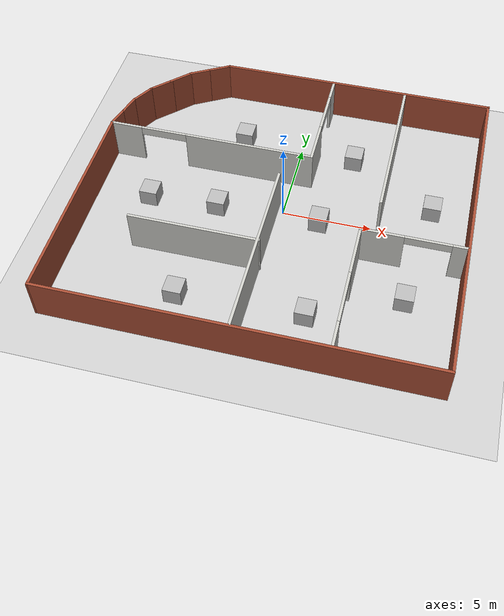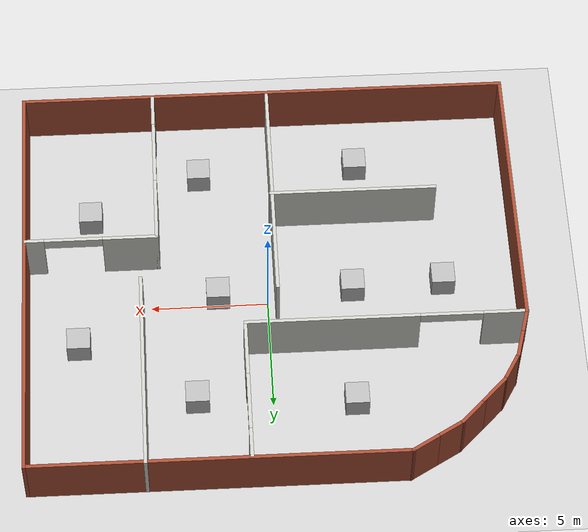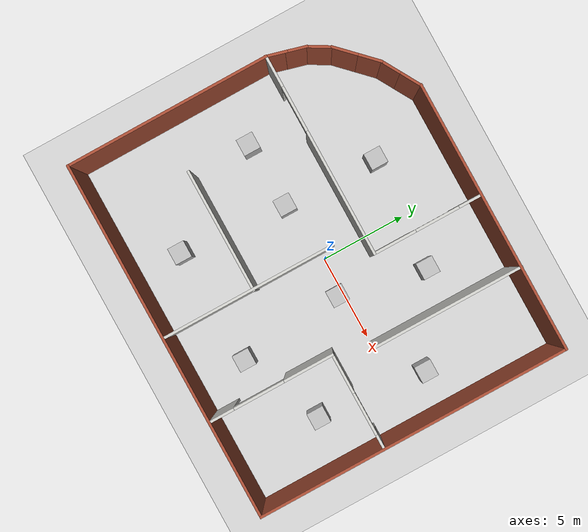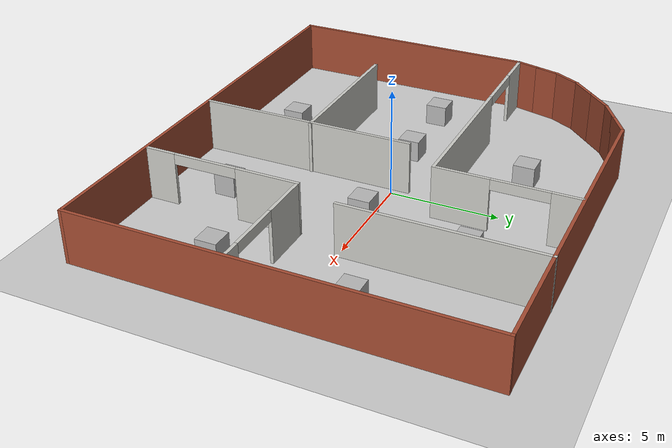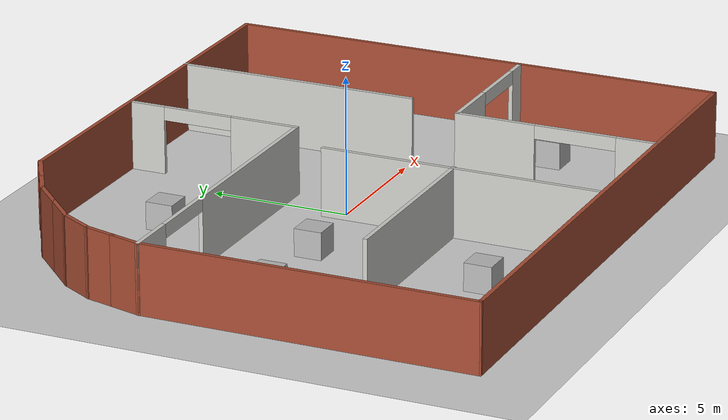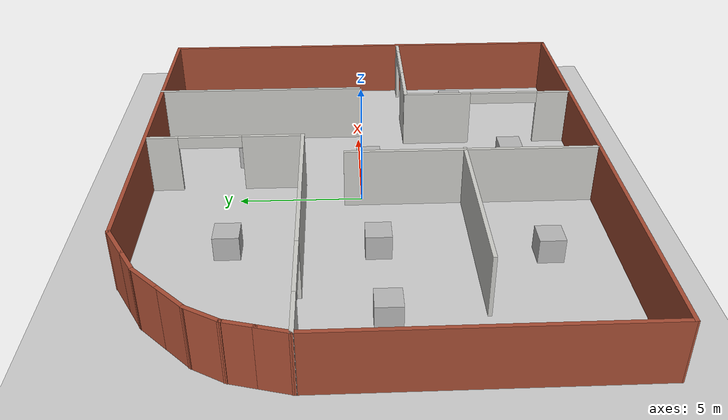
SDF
<sdf version="1.6">
 <world name="default">
  <light name="sun" type="directional">
   <pose>0 0 10 0 -0 0</pose>
   <diffuse>0.8 0.8 0.8 1</diffuse>
   <specular>0.2 0.2 0.2 1</specular>
   <attenuation>
    <range>1000</range>
    <constant>0.9</constant>
    <linear>0.01</linear>
    <quadratic>0.001</quadratic>
   </attenuation>
   <direction>-0.5 0.1 -0.9</direction>
  </light>
  <model name="ground_plane">
   <static>1</static>
   <link name="link">
    <collision name="collision">
     <geometry><plane><normal>0 0 1</normal><size>100 100</size></plane></geometry>
     <surface><friction><ode><mu>100</mu><mu2>50</mu2></ode></friction></surface>
    </collision>
    <visual name="visual">
     <cast_shadows>0</cast_shadows>
     <geometry><plane><normal>0 0 1</normal><size>100 100</size></plane></geometry>
     <material>
      <script><uri>file://media/materials/scripts/gazebo.material</uri><name>Gazebo/Grey</name></script>
     </material>
    </visual>
   </link>
  </model>
  <gravity>0 0 -9.8</gravity>
  <magnetic_field>6e-06 2.3e-05 -4.2e-05</magnetic_field>
  <atmosphere type="adiabatic"/>
  <physics name="default_physics" default="0" type="ode">
   <max_step_size>0.001</max_step_size>
   <real_time_factor>1</real_time_factor>
   <real_time_update_rate>1000</real_time_update_rate>
  </physics>
  <scene><ambient>0.4 0.4 0.4 1</ambient><background>0.7 0.7 0.7 1</background><shadows>1</shadows></scene>
  <spherical_coordinates>
   <surface_model>EARTH_WGS84</surface_model>
   <latitude_deg>0</latitude_deg>
   <longitude_deg>0</longitude_deg>
   <elevation>0</elevation>
   <heading_deg>0</heading_deg>
  </spherical_coordinates>
  <model name="rss1">
   <pose>-0.23521 -0.35315 0 0 -0 0</pose>
   <link name="Wall_10">
    <collision name="Wall_10_Collision">
     <geometry><box><size>1.5 0.15 2.5</size></box></geometry>
     <pose>0 0 1.25 0 -0 0</pose>
    </collision>
    <visual name="Wall_10_Visual">
     <pose>0 0 1.25 0 -0 0</pose>
     <geometry><box><size>1.5 0.15 2.5</size></box></geometry>
     <material>
      <script><uri>file://media/materials/scripts/gazebo.material</uri><name>Gazebo/Bricks</name></script>
      <ambient>1 1 1 1</ambient>
     </material>
     <meta><layer>0</layer></meta>
    </visual>
    <pose>-8.83255 6.50446 0 0 -0 0.785398</pose>
   </link>
   <link name="Wall_11">
    <collision name="Wall_11_Collision">
     <geometry><box><size>1.5 0.15 2.5</size></box></geometry>
     <pose>0 0 1.25 0 -0 0</pose>
    </collision>
    <visual name="Wall_11_Visual">
     <pose>0 0 1.25 0 -0 0</pose>
     <geometry><box><size>1.5 0.15 2.5</size></box></geometry>
     <material>
      <script><uri>file://media/materials/scripts/gazebo.material</uri><name>Gazebo/Bricks</name></script>
      <ambient>1 1 1 1</ambient>
     </material>
     <meta><layer>0</layer></meta>
    </visual>
    <pose>-7.87796 7.45906 0 0 -0 0.785398</pose>
   </link>
   <link name="Wall_12">
    <collision name="Wall_12_Collision">
     <geometry><box><size>1.25 0.15 2.5</size></box></geometry>
     <pose>0 0 1.25 0 -0 0</pose>
    </collision>
    <visual name="Wall_12_Visual">
     <pose>0 0 1.25 0 -0 0</pose>
     <geometry><box><size>1.25 0.15 2.5</size></box></geometry>
     <material>
      <script><uri>file://media/materials/scripts/gazebo.material</uri><name>Gazebo/Bricks</name></script>
      <ambient>1 1 1 1</ambient>
     </material>
     <meta><layer>0</layer></meta>
    </visual>
    <pose>-6.92434 8.21135 0 0 -0 0.523599</pose>
   </link>
   <link name="Wall_13">
    <collision name="Wall_13_Collision">
     <geometry><box><size>1.5 0.15 2.5</size></box></geometry>
     <pose>0 0 1.25 0 -0 0</pose>
    </collision>
    <visual name="Wall_13_Visual">
     <pose>0 0 1.25 0 -0 0</pose>
     <geometry><box><size>1.5 0.15 2.5</size></box></geometry>
     <material>
      <script><uri>file://media/materials/scripts/gazebo.material</uri><name>Gazebo/Bricks</name></script>
      <ambient>1 1 1 1</ambient>
     </material>
     <meta><layer>0</layer></meta>
    </visual>
    <pose>-5.86346 8.82385 0 0 -0 0.523599</pose>
   </link>
   <link name="Wall_14">
    <collision name="Wall_14_Collision">
     <geometry><box><size>16 0.15 2.5</size></box></geometry>
     <pose>0 0 1.25 0 -0 0</pose>
    </collision>
    <visual name="Wall_14_Visual">
     <pose>0 0 1.25 0 -0 0</pose>
     <geometry><box><size>16 0.15 2.5</size></box></geometry>
     <material>
      <script><uri>file://media/materials/scripts/gazebo.material</uri><name>Gazebo/Bricks</name></script>
      <ambient>1 1 1 1</ambient>
     </material>
     <meta><layer>0</layer></meta>
    </visual>
    <pose>2.6461 9.16135 0 0 -0 0</pose>
   </link>
   <link name="Wall_15">
    <collision name="Wall_15_Collision">
     <geometry><box><size>18.5 0.15 2.5</size></box></geometry>
     <pose>0 0 1.25 0 -0 0</pose>
    </collision>
    <visual name="Wall_15_Visual">
     <pose>0 0 1.25 0 -0 0</pose>
     <geometry><box><size>18.5 0.15 2.5</size></box></geometry>
     <material>
      <script><uri>file://media/materials/scripts/gazebo.material</uri><name>Gazebo/Bricks</name></script>
      <ambient>1 1 1 1</ambient>
     </material>
     <meta><layer>0</layer></meta>
    </visual>
    <pose>10.5711 -0.013646 0 0 0 -1.5708</pose>
   </link>
   <link name="Wall_16">
    <collision name="Wall_16_Collision">
     <geometry><box><size>21.25 0.15 2.5</size></box></geometry>
     <pose>0 0 1.25 0 -0 0</pose>
    </collision>
    <visual name="Wall_16_Visual">
     <pose>0 0 1.25 0 -0 0</pose>
     <geometry><box><size>21.25 0.15 2.5</size></box></geometry>
     <material>
      <script><uri>file://media/materials/scripts/gazebo.material</uri><name>Gazebo/Bricks</name></script>
      <ambient>1 1 1 1</ambient>
     </material>
     <meta><layer>0</layer></meta>
    </visual>
    <pose>0.021104 -9.18865 0 0 -0 3.14159</pose>
   </link>
   <link name="Wall_18">
    <collision name="Wall_18_Collision">
     <geometry><box><size>12.0717 0.15 2.5</size></box></geometry>
     <pose>0 0 1.25 0 -0 0</pose>
    </collision>
    <visual name="Wall_18_Visual">
     <pose>0 0 1.25 0 -0 0</pose>
     <geometry><box><size>12.0717 0.15 2.5</size></box></geometry>
     <material>
      <script><uri>file://media/materials/scripts/gazebo.material</uri><name>Gazebo/Bricks</name></script>
      <ambient>1 1 1 1</ambient>
     </material>
     <meta><layer>0</layer></meta>
    </visual>
    <pose>-10.5416 -3.22783 0 0 0 -1.56867</pose>
   </link>
   <link name="Wall_20">
    <pose>4.89349 -5.45065 0 0 -0 1.5708</pose>
    <visual name="Wall_20_Visual_0">
     <pose>-2.99933 0 1.25 0 -0 0</pose>
     <geometry><box><size>1.50133 0.15 2.5</size></box></geometry>
     <material>
      <script><uri>file://media/materials/scripts/gazebo.material</uri><name>Gazebo/CeilingTiled</name></script>
      <ambient>1 1 1 1</ambient>
     </material>
     <meta><layer>0</layer></meta>
    </visual>
    <collision name="Wall_20_Collision_0">
     <geometry><box><size>1.50133 0.15 2.5</size></box></geometry>
     <pose>-2.99933 0 1.25 0 -0 0</pose>
    </collision>
    <visual name="Wall_20_Visual_1">
     <pose>2.25311 0 1.25 0 -0 0</pose>
     <geometry><box><size>2.99378 0.15 2.5</size></box></geometry>
     <material>
      <script><uri>file://media/materials/scripts/gazebo.material</uri><name>Gazebo/CeilingTiled</name></script>
      <ambient>1 1 1 1</ambient>
     </material>
     <meta><layer>0</layer></meta>
    </visual>
    <collision name="Wall_20_Collision_1">
     <geometry><box><size>2.99378 0.15 2.5</size></box></geometry>
     <pose>2.25311 0 1.25 0 -0 0</pose>
    </collision>
    <visual name="Wall_20_Visual_2">
     <pose>-0.746227 0 2.25 0 -0 0</pose>
     <geometry><box><size>3.00488 0.15 0.5</size></box></geometry>
     <material>
      <script><uri>file://media/materials/scripts/gazebo.material</uri><name>Gazebo/CeilingTiled</name></script>
      <ambient>1 1 1 1</ambient>
     </material>
     <meta><layer>0</layer></meta>
    </visual>
    <collision name="Wall_20_Collision_2">
     <geometry><box><size>3.00488 0.15 0.5</size></box></geometry>
     <pose>-0.746227 0 2.25 0 -0 0</pose>
    </collision>
   </link>
   <link name="Wall_21">
    <pose>7.69349 -1.77565 0 0 -0 0</pose>
    <visual name="Wall_21_Visual_0">
     <pose>-1.67643 0 1.25 0 -0 0</pose>
     <geometry><box><size>2.39715 0.15 2.5</size></box></geometry>
     <material>
      <script><uri>file://media/materials/scripts/gazebo.material</uri><name>Gazebo/CeilingTiled</name></script>
      <ambient>1 1 1 1</ambient>
     </material>
     <meta><layer>0</layer></meta>
    </visual>
    <collision name="Wall_21_Collision_0">
     <geometry><box><size>2.39715 0.15 2.5</size></box></geometry>
     <pose>-1.67643 0 1.25 0 -0 0</pose>
    </collision>
    <visual name="Wall_21_Visual_1">
     <pose>2.44658 0 1.25 0 -0 0</pose>
     <geometry><box><size>0.856842 0.15 2.5</size></box></geometry>
     <material>
      <script><uri>file://media/materials/scripts/gazebo.material</uri><name>Gazebo/CeilingTiled</name></script>
      <ambient>1 1 1 1</ambient>
     </material>
     <meta><layer>0</layer></meta>
    </visual>
    <collision name="Wall_21_Collision_1">
     <geometry><box><size>0.856842 0.15 2.5</size></box></geometry>
     <pose>2.44658 0 1.25 0 -0 0</pose>
    </collision>
    <visual name="Wall_21_Visual_2">
     <pose>0.770152 0 2.25 0 -0 0</pose>
     <geometry><box><size>2.49601 0.15 0.5</size></box></geometry>
     <material>
      <script><uri>file://media/materials/scripts/gazebo.material</uri><name>Gazebo/CeilingTiled</name></script>
      <ambient>1 1 1 1</ambient>
     </material>
     <meta><layer>0</layer></meta>
    </visual>
    <collision name="Wall_21_Collision_2">
     <geometry><box><size>2.49601 0.15 0.5</size></box></geometry>
     <pose>0.770152 0 2.25 0 -0 0</pose>
    </collision>
   </link>
   <link name="Wall_25">
    <collision name="Wall_25_Collision">
     <geometry><box><size>10.25 0.15 2.5</size></box></geometry>
     <pose>0 0 1.25 0 -0 0</pose>
    </collision>
    <visual name="Wall_25_Visual">
     <pose>0 0 1.25 0 -0 0</pose>
     <geometry><box><size>10.25 0.15 2.5</size></box></geometry>
     <material>
      <script><uri>file://media/materials/scripts/gazebo.material</uri><name>Gazebo/CeilingTiled</name></script>
      <ambient>1 1 1 1</ambient>
     </material>
     <meta><layer>0</layer></meta>
    </visual>
    <pose>-0.153895 -4.04506 0 0 -0 1.5708</pose>
   </link>
   <link name="Wall_27">
    <collision name="Wall_27_Collision">
     <geometry><box><size>7.25 0.15 2.5</size></box></geometry>
     <pose>0 0 1.25 0 -0 0</pose>
    </collision>
    <visual name="Wall_27_Visual">
     <pose>0 0 1.25 0 -0 0</pose>
     <geometry><box><size>7.25 0.15 2.5</size></box></geometry>
     <material>
      <script><uri>file://media/materials/scripts/gazebo.material</uri><name>Gazebo/CeilingTiled</name></script>
      <ambient>1 1 1 1</ambient>
     </material>
     <meta><layer>0</layer></meta>
    </visual>
    <pose>-3.64271 -3.77236 0 0 -0 3.14159</pose>
   </link>
   <link name="Wall_31">
    <pose>-4.62925 2.73299 0 0 -0 0</pose>
    <visual name="Wall_31_Visual_0">
     <pose>-5.05122 0 1.25 0 -0 0</pose>
     <geometry><box><size>1.89756 0.15 2.5</size></box></geometry>
     <material>
      <script><uri>file://media/materials/scripts/gazebo.material</uri><name>Gazebo/CeilingTiled</name></script>
      <ambient>1 1 1 1</ambient>
     </material>
     <meta><layer>0</layer></meta>
    </visual>
    <collision name="Wall_31_Collision_0">
     <geometry><box><size>1.89756 0.15 2.5</size></box></geometry>
     <pose>-5.05122 0 1.25 0 -0 0</pose>
    </collision>
    <visual name="Wall_31_Visual_1">
     <pose>2.27825 0 1.25 0 -0 0</pose>
     <geometry><box><size>7.4435 0.15 2.5</size></box></geometry>
     <material>
      <script><uri>file://media/materials/scripts/gazebo.material</uri><name>Gazebo/CeilingTiled</name></script>
      <ambient>1 1 1 1</ambient>
     </material>
     <meta><layer>0</layer></meta>
    </visual>
    <collision name="Wall_31_Collision_1">
     <geometry><box><size>7.4435 0.15 2.5</size></box></geometry>
     <pose>2.27825 0 1.25 0 -0 0</pose>
    </collision>
    <visual name="Wall_31_Visual_2">
     <pose>-2.77297 0 2.25 0 -0 0</pose>
     <geometry><box><size>2.65894 0.15 0.5</size></box></geometry>
     <material>
      <script><uri>file://media/materials/scripts/gazebo.material</uri><name>Gazebo/CeilingTiled</name></script>
      <ambient>1 1 1 1</ambient>
     </material>
     <meta><layer>0</layer></meta>
    </visual>
    <collision name="Wall_31_Collision_2">
     <geometry><box><size>2.65894 0.15 0.5</size></box></geometry>
     <pose>-2.77297 0 2.25 0 -0 0</pose>
    </collision>
   </link>
   <link name="Wall_32">
    <pose>1.29575 5.90799 0 0 -0 1.5708</pose>
    <visual name="Wall_32_Visual_0">
     <pose>-1.96755 0 1.25 0 -0 0</pose>
     <geometry><box><size>2.56489 0.15 2.5</size></box></geometry>
     <material>
      <script><uri>file://media/materials/scripts/gazebo.material</uri><name>Gazebo/CeilingTiled</name></script>
      <ambient>1 1 1 1</ambient>
     </material>
     <meta><layer>0</layer></meta>
    </visual>
    <collision name="Wall_32_Collision_0">
     <geometry><box><size>2.56489 0.15 2.5</size></box></geometry>
     <pose>-1.96755 0 1.25 0 -0 0</pose>
    </collision>
    <visual name="Wall_32_Visual_1">
     <pose>2.57674 0 1.25 0 -0 0</pose>
     <geometry><box><size>1.34652 0.15 2.5</size></box></geometry>
     <material>
      <script><uri>file://media/materials/scripts/gazebo.material</uri><name>Gazebo/CeilingTiled</name></script>
      <ambient>1 1 1 1</ambient>
     </material>
     <meta><layer>0</layer></meta>
    </visual>
    <collision name="Wall_32_Collision_1">
     <geometry><box><size>1.34652 0.15 2.5</size></box></geometry>
     <pose>2.57674 0 1.25 0 -0 0</pose>
    </collision>
    <visual name="Wall_32_Visual_2">
     <pose>0.609185 0 2.25 0 -0 0</pose>
     <geometry><box><size>2.58858 0.15 0.5</size></box></geometry>
     <material>
      <script><uri>file://media/materials/scripts/gazebo.material</uri><name>Gazebo/CeilingTiled</name></script>
      <ambient>1 1 1 1</ambient>
     </material>
     <meta><layer>0</layer></meta>
    </visual>
    <collision name="Wall_32_Collision_2">
     <geometry><box><size>2.58858 0.15 0.5</size></box></geometry>
     <pose>0.609185 0 2.25 0 -0 0</pose>
    </collision>
   </link>
   <link name="Wall_35">
    <collision name="Wall_35_Collision">
     <geometry><box><size>9 0.15 2.5</size></box></geometry>
     <pose>0 0 1.25 0 -0 0</pose>
    </collision>
    <visual name="Wall_35_Visual">
     <pose>0 0 1.25 0 -0 0</pose>
     <geometry><box><size>9 0.15 2.5</size></box></geometry>
     <material>
      <script><uri>file://media/materials/scripts/gazebo.material</uri><name>Gazebo/CeilingTiled</name></script>
      <ambient>1 1 1 1</ambient>
     </material>
     <meta><layer>0</layer></meta>
    </visual>
    <pose>5.63151 4.74818 0 0 0 -1.5708</pose>
   </link>
   <link name="Wall_7">
    <collision name="Wall_7_Collision">
     <geometry><box><size>1.25 0.15 2.5</size></box></geometry>
     <pose>0 0 1.25 0 -0 0</pose>
    </collision>
    <visual name="Wall_7_Visual">
     <pose>0 0 1.25 0 -0 0</pose>
     <geometry><box><size>1.25 0.15 2.5</size></box></geometry>
     <material>
      <script><uri>file://media/materials/scripts/gazebo.material</uri><name>Gazebo/Bricks</name></script>
      <ambient>1 1 1 1</ambient>
     </material>
     <meta><layer>0</layer></meta>
    </visual>
    <pose>-10.4119 3.26425 0 0 -0 1.309</pose>
   </link>
   <link name="Wall_8">
    <collision name="Wall_8_Collision">
     <geometry><box><size>1.25 0.15 2.5</size></box></geometry>
     <pose>0 0 1.25 0 -0 0</pose>
    </collision>
    <visual name="Wall_8_Visual">
     <pose>0 0 1.25 0 -0 0</pose>
     <geometry><box><size>1.25 0.15 2.5</size></box></geometry>
     <material>
      <script><uri>file://media/materials/scripts/gazebo.material</uri><name>Gazebo/Bricks</name></script>
      <ambient>1 1 1 1</ambient>
     </material>
     <meta><layer>0</layer></meta>
    </visual>
    <pose>-10.1272 4.32677 0 0 -0 1.309</pose>
   </link>
   <link name="Wall_9">
    <collision name="Wall_9_Collision">
     <geometry><box><size>1.5 0.15 2.5</size></box></geometry>
     <pose>0 0 1.25 0 -0 0</pose>
    </collision>
    <visual name="Wall_9_Visual">
     <pose>0 0 1.25 0 -0 0</pose>
     <geometry><box><size>1.5 0.15 2.5</size></box></geometry>
     <material>
      <script><uri>file://media/materials/scripts/gazebo.material</uri><name>Gazebo/Bricks</name></script>
      <ambient>1 1 1 1</ambient>
     </material>
     <meta><layer>0</layer></meta>
    </visual>
    <pose>-9.64735 5.4426 0 0 -0 1.0472</pose>
   </link>
   <static>1</static>
  </model>
  <model name="unit_box">
   <pose>2.76185 -6.59955 0.499995 0 1e-05 0</pose>
   <link name="link">
    <inertial>
     <mass>1</mass>
     <inertia>
      <ixx>0.166667</ixx>
      <ixy>0</ixy>
      <ixz>0</ixz>
      <iyy>0.166667</iyy>
      <iyz>0</iyz>
      <izz>0.166667</izz>
     </inertia>
    </inertial>
    <collision name="collision"><geometry><box><size>1 1 1</size></box></geometry></collision>
    <visual name="visual">
     <geometry><box><size>1 1 1</size></box></geometry>
     <material><script><uri>file://textures/biohazard.material</uri><name>face/image</name></script></material>
    </visual>
   </link>
  </model>
  <model name="unit_box_0">
   <pose>8.14353 1.91078 0.499995 1e-05 -0 0</pose>
   <link name="link">
    <inertial>
     <mass>1</mass>
     <inertia>
      <ixx>0.166667</ixx>
      <ixy>0</ixy>
      <ixz>0</ixz>
      <iyy>0.166667</iyy>
      <iyz>0</iyz>
      <izz>0.166667</izz>
     </inertia>
    </inertial>
    <collision name="collision"><geometry><box><size>1 1 1</size></box></geometry></collision>
    <visual name="visual">
     <geometry><box><size>1 1 1</size></box></geometry>
     <material><script><uri>file://textures/danger.material</uri><name>image/danger</name></script></material>
    </visual>
   </link>
  </model>
  <model name="unit_box_1">
   <pose>-7.58258 -0.65326 0.499995 0 1e-05 0</pose>
   <link name="link">
    <inertial>
     <mass>1</mass>
     <inertia>
      <ixx>0.166667</ixx>
      <ixy>0</ixy>
      <ixz>0</ixz>
      <iyy>0.166667</iyy>
      <iyz>0</iyz>
      <izz>0.166667</izz>
     </inertia>
    </inertial>
    <collision name="collision"><geometry><box><size>1 1 1</size></box></geometry></collision>
    <visual name="visual">
     <geometry><box><size>1 1 1</size></box></geometry>
     <material><script><uri>file://textures/flamable.material</uri><name>image/flamable</name></script></material>
    </visual>
   </link>
  </model>
  <model name="unit_box_2">
   <pose>2.13114 -0.366979 0.499995 -1e-05 0 0</pose>
   <link name="link">
    <inertial>
     <mass>1</mass>
     <inertia>
      <ixx>0.166667</ixx>
      <ixy>0</ixy>
      <ixz>0</ixz>
      <iyy>0.166667</iyy>
      <iyz>0</iyz>
      <izz>0.166667</izz>
     </inertia>
    </inertial>
    <collision name="collision"><geometry><box><size>1 1 1</size></box></geometry></collision>
    <visual name="visual">
     <geometry><box><size>1 1 1</size></box></geometry>
     <material>
      <script><uri>file://textures/radioactive.material</uri><name>image/radioactive</name></script>
     </material>
    </visual>
   </link>
  </model>
  <model name="unit_box_3">
   <pose>-4.14893 -6.86006 0.5 0 -0 0</pose>
   <link name="link">
    <inertial>
     <mass>1</mass>
     <inertia>
      <ixx>0.166667</ixx>
      <ixy>0</ixy>
      <ixz>0</ixz>
      <iyy>0.166667</iyy>
      <iyz>0</iyz>
      <izz>0.166667</izz>
     </inertia>
    </inertial>
    <collision name="collision"><geometry><box><size>1 1 1</size></box></geometry></collision>
    <visual name="visual">
     <geometry><box><size>1 1 1</size></box></geometry>
     <material>
      <script><name>image/nosmoking</name><uri>file://textures/nosmoking.material</uri></script>
     </material>
    </visual>
   </link>
  </model>
  <model name="unit_box_2_clone">
   <pose>-3.50563 5.13903 0.499995 0 -1e-05 0</pose>
   <link name="link">
    <inertial>
     <mass>1</mass>
     <inertia>
      <ixx>0.166667</ixx>
      <ixy>0</ixy>
      <ixz>0</ixz>
      <iyy>0.166667</iyy>
      <iyz>0</iyz>
      <izz>0.166667</izz>
     </inertia>
    </inertial>
    <collision name="collision"><geometry><box><size>1 1 1</size></box></geometry></collision>
    <visual name="visual">
     <geometry><box><size>1 1 1</size></box></geometry>
     <material><script><name>image/toxic</name><uri>file://textures/toxic.material</uri></script></material>
    </visual>
   </link>
  </model>
  <model name="unit_box_2_clone_0">
   <pose>3.18553 4.74371 0.499995 0 -1e-05 0</pose>
   <link name="link">
    <inertial>
     <mass>1</mass>
     <inertia>
      <ixx>0.166667</ixx>
      <ixy>0</ixy>
      <ixz>0</ixz>
      <iyy>0.166667</iyy>
      <iyz>0</iyz>
      <izz>0.166667</izz>
     </inertia>
    </inertial>
    <collision name="collision"><geometry><box><size>1 1 1</size></box></geometry></collision>
    <visual name="visual">
     <geometry><box><size>1 1 1</size></box></geometry>
     <material><script><name>image/alive</name><uri>file://textures/alive.material</uri></script></material>
    </visual>
   </link>
  </model>
  <model name="unit_box_2_clone_1">
   <pose>7.54101 -4.53219 0.499995 0 -1e-05 0</pose>
   <link name="link">
    <inertial>
     <mass>1</mass>
     <inertia>
      <ixx>0.166667</ixx>
      <ixy>0</ixy>
      <ixz>0</ixz>
      <iyy>0.166667</iyy>
      <iyz>0</iyz>
      <izz>0.166667</izz>
     </inertia>
    </inertial>
    <collision name="collision"><geometry><box><size>1 1 1</size></box></geometry></collision>
    <visual name="visual">
     <geometry><box><size>1 1 1</size></box></geometry>
     <material><script><name>image/alive</name><uri>file://textures/alive.material</uri></script></material>
    </visual>
   </link>
  </model>
  <model name="unit_box_1_clone">
   <pose>-3.67132 -0.501656 0.5 0 -0 0</pose>
   <link name="link">
    <inertial>
     <mass>1</mass>
     <inertia>
      <ixx>0.166667</ixx>
      <ixy>0</ixy>
      <ixz>0</ixz>
      <iyy>0.166667</iyy>
      <iyz>0</iyz>
      <izz>0.166667</izz>
     </inertia>
    </inertial>
    <collision name="collision"><geometry><box><size>1 1 1</size></box></geometry></collision>
    <visual name="visual">
     <geometry><box><size>1 1 1</size></box></geometry>
     <material><script><name>image/dead</name><uri>file://textures/dead.material</uri></script></material>
    </visual>
   </link>
  </model>
 </world>
</sdf>
